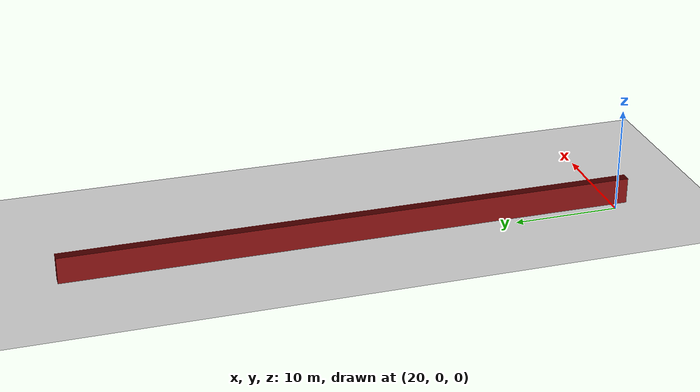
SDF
<sdf version="1.4">
 <world name="1_wall">
  <model name="ground_plane">
   <static>1</static>
   <link name="link">
    <collision name="collision">
     <geometry><plane><normal>0 0 1</normal><size>1000 1000</size></plane></geometry>
     <surface><friction><ode><mu>100</mu><mu2>50</mu2></ode></friction></surface>
    </collision>
    <visual name="visual">
     <cast_shadows>0</cast_shadows>
     <geometry><plane><normal>0 0 1</normal><size>10000 10000</size></plane></geometry>
     <material>
      <script><uri>file://media/materials/scripts/gazebo.material</uri><name>Gazebo/Grey</name></script>
     </material>
    </visual>
    <velocity_decay><linear>0</linear><angular>0</angular></velocity_decay>
   </link>
  </model>
  <model name="Wall_448">
   <static>1</static>
   <link name="Wall_448">
    <collision name="Wall_Collision_448">
     <geometry><box><size>53.65 0.05 2.5</size></box></geometry>
     <pose>0 0 1.25 0 -0 0</pose>
    </collision>
    <visual name="Wall_Visual_448">
     <pose>0 0 1.25 0 -0 0</pose>
     <geometry><box><size>53.65 0.05 2.5</size></box></geometry>
     <material>
      <script><uri>file://media/materials/scripts/gazebo.material</uri><name>Gazebo/Red</name></script>
     </material>
    </visual>
    <velocity_decay><linear>0</linear><angular>0</angular></velocity_decay>
    <pose>20.9 25.3 0 0 0 1.5707963267948966</pose>
   </link>
  </model>
  <model name="Wall_449">
   <static>1</static>
   <link name="Wall_449">
    <collision name="Wall_Collision_449">
     <geometry><box><size>53.65 0.05 2.5</size></box></geometry>
     <pose>0 0 1.25 0 -0 0</pose>
    </collision>
    <visual name="Wall_Visual_449">
     <pose>0 0 1.25 0 -0 0</pose>
     <geometry><box><size>53.65 0.05 2.5</size></box></geometry>
     <material>
      <script><uri>file://media/materials/scripts/gazebo.material</uri><name>Gazebo/Red</name></script>
     </material>
    </visual>
    <velocity_decay><linear>0</linear><angular>0</angular></velocity_decay>
    <pose>20.95 25.3 0 0 0 1.5707963267948966</pose>
   </link>
  </model>
  <model name="Wall_450">
   <static>1</static>
   <link name="Wall_450">
    <collision name="Wall_Collision_450">
     <geometry><box><size>53.65 0.05 2.5</size></box></geometry>
     <pose>0 0 1.25 0 -0 0</pose>
    </collision>
    <visual name="Wall_Visual_450">
     <pose>0 0 1.25 0 -0 0</pose>
     <geometry><box><size>53.65 0.05 2.5</size></box></geometry>
     <material>
      <script><uri>file://media/materials/scripts/gazebo.material</uri><name>Gazebo/Red</name></script>
     </material>
    </visual>
    <velocity_decay><linear>0</linear><angular>0</angular></velocity_decay>
    <pose>21.0 25.3 0 0 0 1.5707963267948966</pose>
   </link>
  </model>
  <model name="Wall_451">
   <static>1</static>
   <link name="Wall_451">
    <collision name="Wall_Collision_451">
     <geometry><box><size>53.65 0.05 2.5</size></box></geometry>
     <pose>0 0 1.25 0 -0 0</pose>
    </collision>
    <visual name="Wall_Visual_451">
     <pose>0 0 1.25 0 -0 0</pose>
     <geometry><box><size>53.65 0.05 2.5</size></box></geometry>
     <material>
      <script><uri>file://media/materials/scripts/gazebo.material</uri><name>Gazebo/Red</name></script>
     </material>
    </visual>
    <velocity_decay><linear>0</linear><angular>0</angular></velocity_decay>
    <pose>21.05 25.3 0 0 0 1.5707963267948966</pose>
   </link>
  </model>
  <model name="Wall_452">
   <static>1</static>
   <link name="Wall_452">
    <collision name="Wall_Collision_452">
     <geometry><box><size>53.65 0.05 2.5</size></box></geometry>
     <pose>0 0 1.25 0 -0 0</pose>
    </collision>
    <visual name="Wall_Visual_452">
     <pose>0 0 1.25 0 -0 0</pose>
     <geometry><box><size>53.65 0.05 2.5</size></box></geometry>
     <material>
      <script><uri>file://media/materials/scripts/gazebo.material</uri><name>Gazebo/Red</name></script>
     </material>
    </visual>
    <velocity_decay><linear>0</linear><angular>0</angular></velocity_decay>
    <pose>21.1 25.3 0 0 0 1.5707963267948966</pose>
   </link>
  </model>
  <model name="Wall_453">
   <static>1</static>
   <link name="Wall_453">
    <collision name="Wall_Collision_453">
     <geometry><box><size>53.65 0.05 2.5</size></box></geometry>
     <pose>0 0 1.25 0 -0 0</pose>
    </collision>
    <visual name="Wall_Visual_453">
     <pose>0 0 1.25 0 -0 0</pose>
     <geometry><box><size>53.65 0.05 2.5</size></box></geometry>
     <material>
      <script><uri>file://media/materials/scripts/gazebo.material</uri><name>Gazebo/Red</name></script>
     </material>
    </visual>
    <velocity_decay><linear>0</linear><angular>0</angular></velocity_decay>
    <pose>21.15 25.3 0 0 0 1.5707963267948966</pose>
   </link>
  </model>
  <model name="Wall_454">
   <static>1</static>
   <link name="Wall_454">
    <collision name="Wall_Collision_454">
     <geometry><box><size>53.65 0.05 2.5</size></box></geometry>
     <pose>0 0 1.25 0 -0 0</pose>
    </collision>
    <visual name="Wall_Visual_454">
     <pose>0 0 1.25 0 -0 0</pose>
     <geometry><box><size>53.65 0.05 2.5</size></box></geometry>
     <material>
      <script><uri>file://media/materials/scripts/gazebo.material</uri><name>Gazebo/Red</name></script>
     </material>
    </visual>
    <velocity_decay><linear>0</linear><angular>0</angular></velocity_decay>
    <pose>21.2 25.3 0 0 0 1.5707963267948966</pose>
   </link>
  </model>
  <model name="Wall_455">
   <static>1</static>
   <link name="Wall_455">
    <collision name="Wall_Collision_455">
     <geometry><box><size>53.65 0.05 2.5</size></box></geometry>
     <pose>0 0 1.25 0 -0 0</pose>
    </collision>
    <visual name="Wall_Visual_455">
     <pose>0 0 1.25 0 -0 0</pose>
     <geometry><box><size>53.65 0.05 2.5</size></box></geometry>
     <material>
      <script><uri>file://media/materials/scripts/gazebo.material</uri><name>Gazebo/Red</name></script>
     </material>
    </visual>
    <velocity_decay><linear>0</linear><angular>0</angular></velocity_decay>
    <pose>21.25 25.3 0 0 0 1.5707963267948966</pose>
   </link>
  </model>
  <model name="Wall_456">
   <static>1</static>
   <link name="Wall_456">
    <collision name="Wall_Collision_456">
     <geometry><box><size>53.65 0.05 2.5</size></box></geometry>
     <pose>0 0 1.25 0 -0 0</pose>
    </collision>
    <visual name="Wall_Visual_456">
     <pose>0 0 1.25 0 -0 0</pose>
     <geometry><box><size>53.65 0.05 2.5</size></box></geometry>
     <material>
      <script><uri>file://media/materials/scripts/gazebo.material</uri><name>Gazebo/Red</name></script>
     </material>
    </visual>
    <velocity_decay><linear>0</linear><angular>0</angular></velocity_decay>
    <pose>21.3 25.3 0 0 0 1.5707963267948966</pose>
   </link>
  </model>
  <model name="Wall_457">
   <static>1</static>
   <link name="Wall_457">
    <collision name="Wall_Collision_457">
     <geometry><box><size>53.65 0.05 2.5</size></box></geometry>
     <pose>0 0 1.25 0 -0 0</pose>
    </collision>
    <visual name="Wall_Visual_457">
     <pose>0 0 1.25 0 -0 0</pose>
     <geometry><box><size>53.65 0.05 2.5</size></box></geometry>
     <material>
      <script><uri>file://media/materials/scripts/gazebo.material</uri><name>Gazebo/Red</name></script>
     </material>
    </visual>
    <velocity_decay><linear>0</linear><angular>0</angular></velocity_decay>
    <pose>21.35 25.3 0 0 0 1.5707963267948966</pose>
   </link>
  </model>
  <model name="Wall_458">
   <static>1</static>
   <link name="Wall_458">
    <collision name="Wall_Collision_458">
     <geometry><box><size>53.65 0.05 2.5</size></box></geometry>
     <pose>0 0 1.25 0 -0 0</pose>
    </collision>
    <visual name="Wall_Visual_458">
     <pose>0 0 1.25 0 -0 0</pose>
     <geometry><box><size>53.65 0.05 2.5</size></box></geometry>
     <material>
      <script><uri>file://media/materials/scripts/gazebo.material</uri><name>Gazebo/Red</name></script>
     </material>
    </visual>
    <velocity_decay><linear>0</linear><angular>0</angular></velocity_decay>
    <pose>21.4 25.3 0 0 0 1.5707963267948966</pose>
   </link>
  </model>
  <model name="Wall_459">
   <static>1</static>
   <link name="Wall_459">
    <collision name="Wall_Collision_459">
     <geometry><box><size>53.65 0.05 2.5</size></box></geometry>
     <pose>0 0 1.25 0 -0 0</pose>
    </collision>
    <visual name="Wall_Visual_459">
     <pose>0 0 1.25 0 -0 0</pose>
     <geometry><box><size>53.65 0.05 2.5</size></box></geometry>
     <material>
      <script><uri>file://media/materials/scripts/gazebo.material</uri><name>Gazebo/Red</name></script>
     </material>
    </visual>
    <velocity_decay><linear>0</linear><angular>0</angular></velocity_decay>
    <pose>21.45 25.3 0 0 0 1.5707963267948966</pose>
   </link>
  </model>
  <model name="Wall_460">
   <static>1</static>
   <link name="Wall_460">
    <collision name="Wall_Collision_460">
     <geometry><box><size>53.65 0.05 2.5</size></box></geometry>
     <pose>0 0 1.25 0 -0 0</pose>
    </collision>
    <visual name="Wall_Visual_460">
     <pose>0 0 1.25 0 -0 0</pose>
     <geometry><box><size>53.65 0.05 2.5</size></box></geometry>
     <material>
      <script><uri>file://media/materials/scripts/gazebo.material</uri><name>Gazebo/Red</name></script>
     </material>
    </visual>
    <velocity_decay><linear>0</linear><angular>0</angular></velocity_decay>
    <pose>21.5 25.3 0 0 0 1.5707963267948966</pose>
   </link>
  </model>
  <model name="Wall_461">
   <static>1</static>
   <link name="Wall_461">
    <collision name="Wall_Collision_461">
     <geometry><box><size>53.65 0.05 2.5</size></box></geometry>
     <pose>0 0 1.25 0 -0 0</pose>
    </collision>
    <visual name="Wall_Visual_461">
     <pose>0 0 1.25 0 -0 0</pose>
     <geometry><box><size>53.65 0.05 2.5</size></box></geometry>
     <material>
      <script><uri>file://media/materials/scripts/gazebo.material</uri><name>Gazebo/Red</name></script>
     </material>
    </visual>
    <velocity_decay><linear>0</linear><angular>0</angular></velocity_decay>
    <pose>21.55 25.3 0 0 0 1.5707963267948966</pose>
   </link>
  </model>
  <model name="Wall_462">
   <static>1</static>
   <link name="Wall_462">
    <collision name="Wall_Collision_462">
     <geometry><box><size>53.65 0.05 2.5</size></box></geometry>
     <pose>0 0 1.25 0 -0 0</pose>
    </collision>
    <visual name="Wall_Visual_462">
     <pose>0 0 1.25 0 -0 0</pose>
     <geometry><box><size>53.65 0.05 2.5</size></box></geometry>
     <material>
      <script><uri>file://media/materials/scripts/gazebo.material</uri><name>Gazebo/Red</name></script>
     </material>
    </visual>
    <velocity_decay><linear>0</linear><angular>0</angular></velocity_decay>
    <pose>21.6 25.3 0 0 0 1.5707963267948966</pose>
   </link>
  </model>
  <model name="Wall_463">
   <static>1</static>
   <link name="Wall_463">
    <collision name="Wall_Collision_463">
     <geometry><box><size>53.65 0.05 2.5</size></box></geometry>
     <pose>0 0 1.25 0 -0 0</pose>
    </collision>
    <visual name="Wall_Visual_463">
     <pose>0 0 1.25 0 -0 0</pose>
     <geometry><box><size>53.65 0.05 2.5</size></box></geometry>
     <material>
      <script><uri>file://media/materials/scripts/gazebo.material</uri><name>Gazebo/Red</name></script>
     </material>
    </visual>
    <velocity_decay><linear>0</linear><angular>0</angular></velocity_decay>
    <pose>21.65 25.3 0 0 0 1.5707963267948966</pose>
   </link>
  </model>
  <model name="Wall_464">
   <static>1</static>
   <link name="Wall_464">
    <collision name="Wall_Collision_464">
     <geometry><box><size>53.65 0.05 2.5</size></box></geometry>
     <pose>0 0 1.25 0 -0 0</pose>
    </collision>
    <visual name="Wall_Visual_464">
     <pose>0 0 1.25 0 -0 0</pose>
     <geometry><box><size>53.65 0.05 2.5</size></box></geometry>
     <material>
      <script><uri>file://media/materials/scripts/gazebo.material</uri><name>Gazebo/Red</name></script>
     </material>
    </visual>
    <velocity_decay><linear>0</linear><angular>0</angular></velocity_decay>
    <pose>21.7 25.3 0 0 0 1.5707963267948966</pose>
   </link>
  </model>
  <model name="Wall_465">
   <static>1</static>
   <link name="Wall_465">
    <collision name="Wall_Collision_465">
     <geometry><box><size>53.65 0.05 2.5</size></box></geometry>
     <pose>0 0 1.25 0 -0 0</pose>
    </collision>
    <visual name="Wall_Visual_465">
     <pose>0 0 1.25 0 -0 0</pose>
     <geometry><box><size>53.65 0.05 2.5</size></box></geometry>
     <material>
      <script><uri>file://media/materials/scripts/gazebo.material</uri><name>Gazebo/Red</name></script>
     </material>
    </visual>
    <velocity_decay><linear>0</linear><angular>0</angular></velocity_decay>
    <pose>21.75 25.3 0 0 0 1.5707963267948966</pose>
   </link>
  </model>
 </world>
</sdf>
